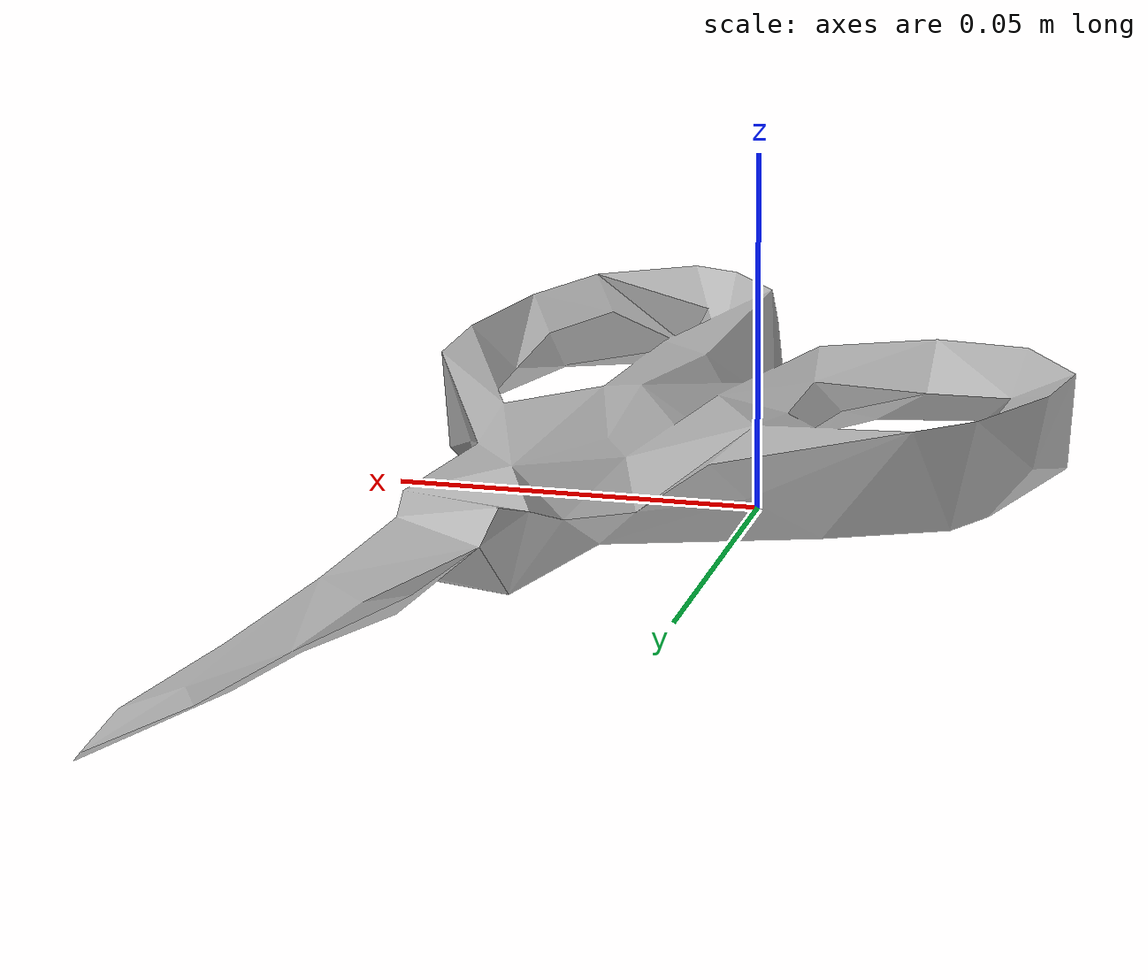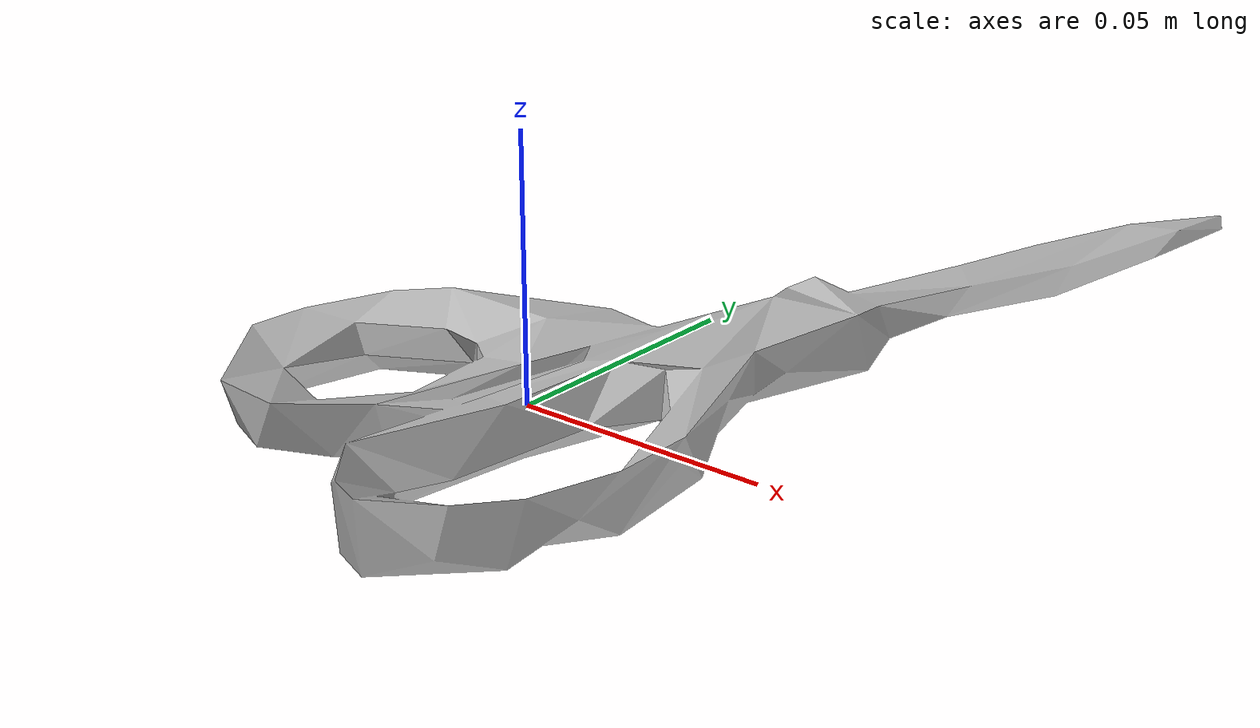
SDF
<?xml version='1.0'?>
<sdf version="1.4">
  <model name="037_scissors">
    <static>false</static>
    <link name="link">
      <inertial>
        <pose>0.016110820762022696 0.008343501332720254 0.00731408379171903 0.9350180905619144 -1.5603287909346681 -2.782272986023786</pose>
        <mass>0.012851903930403308</mass>
        <inertia>
          <ixx>2.8448373122165597e-05</ixx>
          <ixy>-9.238239103948118e-23</ixy>
          <ixz>-7.051457850683609e-23</ixz>
          <iyy>2.3800443829079756e-05</iyy>
          <iyz>-3.49005955054248e-21</iyz>
          <izz>5.022066854876743e-06</izz>
        </inertia>
      </inertial>
      <collision name="collision">
        <geometry>
          <mesh>
            <!-- Use a downsampled mesh for collisions -->
            <uri>model:///037_scissors/037_scissors_250_collision.stl</uri>
	        </mesh>
        </geometry>
        <surface>
      </surface>
      </collision>
      <visual name="visual">
        <geometry>
          <mesh>
            <uri>model:///037_scissors/textured.obj</uri>
	        </mesh>
        </geometry>
        <material>
          <script>
            <uri>model:///037_scissors/037_scissors.material</uri>
            <name>037_scissors</name>
          </script>
        </material>
      </visual>
    </link>
  </model>
</sdf>
